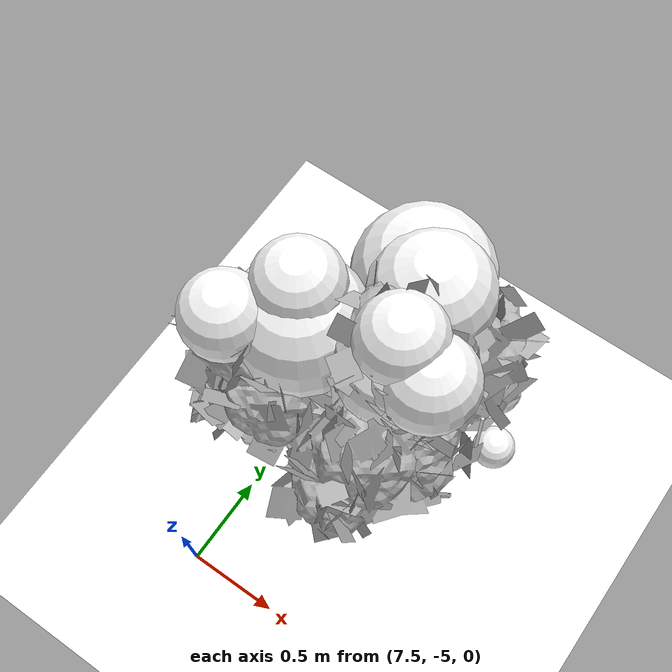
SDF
<sdf version="1.11">
 <world name="peach_orchard">
  <model name="ground">
   <static>true</static>
   <link name="link">
    <visual name="soil">
     <geometry><plane><normal>0 0 1</normal><size>32 22</size></plane></geometry>
     <material>
      <ambient>1 1 1 1</ambient>
      <diffuse>1 1 1 1</diffuse>
      <specular>0.1 0.1 0.1 1</specular>
      <pbr>
       <metal>
        <albedo_map>textures/soil_albedo.png</albedo_map>
        <normal_map type="tangent">textures/soil_normal.png</normal_map>
        <roughness>0.95</roughness>
        <metalness>0</metalness>
       </metal>
      </pbr>
     </material>
    </visual>
    <collision name="c_soil">
     <geometry><plane><normal>0 0 1</normal><size>32 22</size></plane></geometry>
    </collision>
   </link>
  </model>
  <model name="tree_r4_t1">
   <pose>8 -4.4 0 0 0 0</pose>
   <static>true</static>
   <link name="link">
    <visual name="tree_mesh">
     <pose>0 0 0 0 0 -0.311052</pose>
     <geometry>
      <mesh><uri>model://peach_sim/meshes/peach_tree_b.glb</uri><scale>0.943944 0.943944 0.943944</scale></mesh>
     </geometry>
    </visual>
    <visual name="trunk_0">
     <pose>0 0 0.15524 0 0 0</pose>
     <geometry><cylinder><radius>0.0507696</radius><length>0.310479</length></cylinder></geometry>
     <material>
      <ambient>1 1 1 1</ambient>
      <diffuse>1 1 1 1</diffuse>
      <specular>0.1 0.1 0.1 1</specular>
      <pbr>
       <metal>
        <albedo_map>textures/bark_albedo.png</albedo_map>
        <normal_map type="tangent">textures/bark_normal.png</normal_map>
        <roughness>0.9</roughness>
        <metalness>0</metalness>
       </metal>
      </pbr>
     </material>
    </visual>
    <collision name="c_trunk_0">
     <pose>0 0 0.15524 0 0 0</pose>
     <geometry><cylinder><radius>0.0507696</radius><length>0.310479</length></cylinder></geometry>
    </collision>
    <visual name="trunk_1">
     <pose>0 0 0.437493 0 0 0</pose>
     <geometry><cylinder><radius>0.0365541</radius><length>0.254028</length></cylinder></geometry>
     <material>
      <ambient>1 1 1 1</ambient>
      <diffuse>1 1 1 1</diffuse>
      <specular>0.1 0.1 0.1 1</specular>
      <pbr>
       <metal>
        <albedo_map>textures/bark_albedo.png</albedo_map>
        <normal_map type="tangent">textures/bark_normal.png</normal_map>
        <roughness>0.9</roughness>
        <metalness>0</metalness>
       </metal>
      </pbr>
     </material>
    </visual>
    <collision name="c_trunk_1">
     <pose>0 0 0.437493 0 0 0</pose>
     <geometry><cylinder><radius>0.0365541</radius><length>0.254028</length></cylinder></geometry>
    </collision>
    <visual name="root_flare">
     <pose>0 0 0.035 0 0 0</pose>
     <geometry><cylinder><radius>0.073616</radius><length>0.07</length></cylinder></geometry>
     <material>
      <ambient>1 1 1 1</ambient>
      <diffuse>1 1 1 1</diffuse>
      <specular>0.1 0.1 0.1 1</specular>
      <pbr>
       <metal>
        <albedo_map>textures/bark_albedo.png</albedo_map>
        <normal_map type="tangent">textures/bark_normal.png</normal_map>
        <roughness>0.95</roughness>
        <metalness>0</metalness>
       </metal>
      </pbr>
     </material>
    </visual>
    <visual name="scaffold_0">
     <pose>-0.0481711 0.335949 0.754969 0 0.963933 1.71321</pose>
     <geometry><cylinder><radius>0.022</radius><length>0.826317</length></cylinder></geometry>
     <material>
      <ambient>1 1 1 1</ambient>
      <diffuse>1 1 1 1</diffuse>
      <specular>0.1 0.1 0.1 1</specular>
      <pbr>
       <metal>
        <albedo_map>textures/bark_albedo.png</albedo_map>
        <normal_map type="tangent">textures/bark_normal.png</normal_map>
        <roughness>0.9</roughness>
        <metalness>0</metalness>
       </metal>
      </pbr>
     </material>
    </visual>
    <collision name="c_scaffold_0">
     <pose>-0.0481711 0.335949 0.754969 0 0.963933 1.71321</pose>
     <geometry><cylinder><radius>0.022</radius><length>0.826317</length></cylinder></geometry>
    </collision>
    <visual name="branchlet_0_0">
     <pose>-0.157032 0.624105 0.888296 0 1.48009 2.19614</pose>
     <geometry><cylinder><radius>0.012</radius><length>0.289139</length></cylinder></geometry>
     <material>
      <ambient>1 1 1 1</ambient>
      <diffuse>1 1 1 1</diffuse>
      <specular>0.1 0.1 0.1 1</specular>
      <pbr>
       <metal>
        <albedo_map>textures/bark_albedo.png</albedo_map>
        <normal_map type="tangent">textures/bark_normal.png</normal_map>
        <roughness>0.9</roughness>
        <metalness>0</metalness>
       </metal>
      </pbr>
     </material>
    </visual>
    <visual name="branchlet_0_1">
     <pose>-0.154471 0.499819 1.01339 0 0.948906 -2.23811</pose>
     <geometry><cylinder><radius>0.012</radius><length>0.278538</length></cylinder></geometry>
     <material>
      <ambient>1 1 1 1</ambient>
      <diffuse>1 1 1 1</diffuse>
      <specular>0.1 0.1 0.1 1</specular>
      <pbr>
       <metal>
        <albedo_map>textures/bark_albedo.png</albedo_map>
        <normal_map type="tangent">textures/bark_normal.png</normal_map>
        <roughness>0.9</roughness>
        <metalness>0</metalness>
       </metal>
      </pbr>
     </material>
    </visual>
    <visual name="branchlet_0_2">
     <pose>-0.0641558 0.301136 0.864269 0 0.559937 -1.79024</pose>
     <geometry><cylinder><radius>0.012</radius><length>0.22086</length></cylinder></geometry>
     <material>
      <ambient>1 1 1 1</ambient>
      <diffuse>1 1 1 1</diffuse>
      <specular>0.1 0.1 0.1 1</specular>
      <pbr>
       <metal>
        <albedo_map>textures/bark_albedo.png</albedo_map>
        <normal_map type="tangent">textures/bark_normal.png</normal_map>
        <roughness>0.9</roughness>
        <metalness>0</metalness>
       </metal>
      </pbr>
     </material>
    </visual>
    <visual name="scaffold_1">
     <pose>0.0949287 0.27659 0.712761 0 0.986442 1.24018</pose>
     <geometry><cylinder><radius>0.022</radius><length>0.701206</length></cylinder></geometry>
     <material>
      <ambient>1 1 1 1</ambient>
      <diffuse>1 1 1 1</diffuse>
      <specular>0.1 0.1 0.1 1</specular>
      <pbr>
       <metal>
        <albedo_map>textures/bark_albedo.png</albedo_map>
        <normal_map type="tangent">textures/bark_normal.png</normal_map>
        <roughness>0.9</roughness>
        <metalness>0</metalness>
       </metal>
      </pbr>
     </material>
    </visual>
    <collision name="c_scaffold_1">
     <pose>0.0949287 0.27659 0.712761 0 0.986442 1.24018</pose>
     <geometry><cylinder><radius>0.022</radius><length>0.701206</length></cylinder></geometry>
    </collision>
    <visual name="branchlet_1_0">
     <pose>0.0131108 0.411685 0.906023 0 0.927525 -3.11992</pose>
     <geometry><cylinder><radius>0.012</radius><length>0.322883</length></cylinder></geometry>
     <material>
      <ambient>1 1 1 1</ambient>
      <diffuse>1 1 1 1</diffuse>
      <specular>0.1 0.1 0.1 1</specular>
      <pbr>
       <metal>
        <albedo_map>textures/bark_albedo.png</albedo_map>
        <normal_map type="tangent">textures/bark_normal.png</normal_map>
        <roughness>0.9</roughness>
        <metalness>0</metalness>
       </metal>
      </pbr>
     </material>
    </visual>
    <visual name="branchlet_1_1">
     <pose>0.0722677 0.304165 0.846355 0 0.333441 -2.86091</pose>
     <geometry><cylinder><radius>0.012</radius><length>0.226736</length></cylinder></geometry>
     <material>
      <ambient>1 1 1 1</ambient>
      <diffuse>1 1 1 1</diffuse>
      <specular>0.1 0.1 0.1 1</specular>
      <pbr>
       <metal>
        <albedo_map>textures/bark_albedo.png</albedo_map>
        <normal_map type="tangent">textures/bark_normal.png</normal_map>
        <roughness>0.9</roughness>
        <metalness>0</metalness>
       </metal>
      </pbr>
     </material>
    </visual>
    <visual name="scaffold_2">
     <pose>-0.212516 0.185098 0.695075 0 1.01325 2.42504</pose>
     <geometry><cylinder><radius>0.022</radius><length>0.664243</length></cylinder></geometry>
     <material>
      <ambient>1 1 1 1</ambient>
      <diffuse>1 1 1 1</diffuse>
      <specular>0.1 0.1 0.1 1</specular>
      <pbr>
       <metal>
        <albedo_map>textures/bark_albedo.png</albedo_map>
        <normal_map type="tangent">textures/bark_normal.png</normal_map>
        <roughness>0.9</roughness>
        <metalness>0</metalness>
       </metal>
      </pbr>
     </material>
    </visual>
    <collision name="c_scaffold_2">
     <pose>-0.212516 0.185098 0.695075 0 1.01325 2.42504</pose>
     <geometry><cylinder><radius>0.022</radius><length>0.664243</length></cylinder></geometry>
    </collision>
    <visual name="branchlet_2_0">
     <pose>-0.524785 0.410671 0.843061 0 1.5172 2.63982</pose>
     <geometry><cylinder><radius>0.012</radius><length>0.328859</length></cylinder></geometry>
     <material>
      <ambient>1 1 1 1</ambient>
      <diffuse>1 1 1 1</diffuse>
      <specular>0.1 0.1 0.1 1</specular>
      <pbr>
       <metal>
        <albedo_map>textures/bark_albedo.png</albedo_map>
        <normal_map type="tangent">textures/bark_normal.png</normal_map>
        <roughness>0.9</roughness>
        <metalness>0</metalness>
       </metal>
      </pbr>
     </material>
    </visual>
    <visual name="branchlet_2_1">
     <pose>-0.241769 0.160051 0.831848 0 0.466546 -1.48592</pose>
     <geometry><cylinder><radius>0.012</radius><length>0.243515</length></cylinder></geometry>
     <material>
      <ambient>1 1 1 1</ambient>
      <diffuse>1 1 1 1</diffuse>
      <specular>0.1 0.1 0.1 1</specular>
      <pbr>
       <metal>
        <albedo_map>textures/bark_albedo.png</albedo_map>
        <normal_map type="tangent">textures/bark_normal.png</normal_map>
        <roughness>0.9</roughness>
        <metalness>0</metalness>
       </metal>
      </pbr>
     </material>
    </visual>
    <visual name="canopy_0">
     <pose>0.0686515 0.631176 1.83042 0 0 0</pose>
     <geometry><sphere><radius>0.269297</radius></sphere></geometry>
     <material>
      <ambient>1 1 1 1</ambient>
      <diffuse>1 1 1 1</diffuse>
      <specular>0.1 0.1 0.1 1</specular>
      <pbr>
       <metal>
        <albedo_map>textures/leaf_albedo.png</albedo_map>
        <normal_map type="tangent">textures/leaf_normal.png</normal_map>
        <roughness>0.85</roughness>
        <metalness>0</metalness>
       </metal>
      </pbr>
     </material>
    </visual>
    <collision name="c_canopy_0">
     <pose>0.0686515 0.631176 1.83042 0 0 0</pose>
     <geometry><sphere><radius>0.269297</radius></sphere></geometry>
    </collision>
    <visual name="canopy_1">
     <pose>0.134012 0.302167 2.07886 0 0 0</pose>
     <geometry><sphere><radius>0.186712</radius></sphere></geometry>
     <material>
      <ambient>1 1 1 1</ambient>
      <diffuse>1 1 1 1</diffuse>
      <specular>0.1 0.1 0.1 1</specular>
      <pbr>
       <metal>
        <albedo_map>textures/leaf_albedo.png</albedo_map>
        <normal_map type="tangent">textures/leaf_normal.png</normal_map>
        <roughness>0.85</roughness>
        <metalness>0</metalness>
       </metal>
      </pbr>
     </material>
    </visual>
    <collision name="c_canopy_1">
     <pose>0.134012 0.302167 2.07886 0 0 0</pose>
     <geometry><sphere><radius>0.186712</radius></sphere></geometry>
    </collision>
    <visual name="canopy_2">
     <pose>-0.489388 0.0438228 1.98173 0 0 0</pose>
     <geometry><sphere><radius>0.183748</radius></sphere></geometry>
     <material>
      <ambient>1 1 1 1</ambient>
      <diffuse>1 1 1 1</diffuse>
      <specular>0.1 0.1 0.1 1</specular>
      <pbr>
       <metal>
        <albedo_map>textures/leaf_albedo.png</albedo_map>
        <normal_map type="tangent">textures/leaf_normal.png</normal_map>
        <roughness>0.85</roughness>
        <metalness>0</metalness>
       </metal>
      </pbr>
     </material>
    </visual>
    <collision name="c_canopy_2">
     <pose>-0.489388 0.0438228 1.98173 0 0 0</pose>
     <geometry><sphere><radius>0.183748</radius></sphere></geometry>
    </collision>
    <visual name="canopy_3">
     <pose>-0.0267887 0.734815 1.707 0 0 0</pose>
     <geometry><sphere><radius>0.311519</radius></sphere></geometry>
     <material>
      <ambient>1 1 1 1</ambient>
      <diffuse>1 1 1 1</diffuse>
      <specular>0.1 0.1 0.1 1</specular>
      <pbr>
       <metal>
        <albedo_map>textures/leaf_albedo.png</albedo_map>
        <normal_map type="tangent">textures/leaf_normal.png</normal_map>
        <roughness>0.85</roughness>
        <metalness>0</metalness>
       </metal>
      </pbr>
     </material>
    </visual>
    <visual name="canopy_4">
     <pose>0.20033 0.277217 1.91852 0 0 0</pose>
     <geometry><sphere><radius>0.213361</radius></sphere></geometry>
     <material>
      <ambient>1 1 1 1</ambient>
      <diffuse>1 1 1 1</diffuse>
      <specular>0.1 0.1 0.1 1</specular>
      <pbr>
       <metal>
        <albedo_map>textures/leaf_albedo.png</albedo_map>
        <normal_map type="tangent">textures/leaf_normal.png</normal_map>
        <roughness>0.85</roughness>
        <metalness>0</metalness>
       </metal>
      </pbr>
     </material>
    </visual>
    <visual name="canopy_5">
     <pose>-0.278591 0.22531 1.8503 0 0 0</pose>
     <geometry><sphere><radius>0.291861</radius></sphere></geometry>
     <material>
      <ambient>1 1 1 1</ambient>
      <diffuse>1 1 1 1</diffuse>
      <specular>0.1 0.1 0.1 1</specular>
      <pbr>
       <metal>
        <albedo_map>textures/leaf_albedo.png</albedo_map>
        <normal_map type="tangent">textures/leaf_normal.png</normal_map>
        <roughness>0.85</roughness>
        <metalness>0</metalness>
       </metal>
      </pbr>
     </material>
    </visual>
    <visual name="canopy_6">
     <pose>0.123876 0.271858 1.86183 0 0 0</pose>
     <geometry><sphere><radius>0.235888</radius></sphere></geometry>
     <material>
      <ambient>1 1 1 1</ambient>
      <diffuse>1 1 1 1</diffuse>
      <specular>0.1 0.1 0.1 1</specular>
      <pbr>
       <metal>
        <albedo_map>textures/leaf_albedo.png</albedo_map>
        <normal_map type="tangent">textures/leaf_normal.png</normal_map>
        <roughness>0.85</roughness>
        <metalness>0</metalness>
       </metal>
      </pbr>
     </material>
    </visual>
    <visual name="canopy_7">
     <pose>0.290338 0.261265 1.97135 0 0 0</pose>
     <geometry><sphere><radius>0.201224</radius></sphere></geometry>
     <material>
      <ambient>1 1 1 1</ambient>
      <diffuse>1 1 1 1</diffuse>
      <specular>0.1 0.1 0.1 1</specular>
      <pbr>
       <metal>
        <albedo_map>textures/leaf_albedo.png</albedo_map>
        <normal_map type="tangent">textures/leaf_normal.png</normal_map>
        <roughness>0.85</roughness>
        <metalness>0</metalness>
       </metal>
      </pbr>
     </material>
    </visual>
    <visual name="canopy_8">
     <pose>-0.312778 0.280997 2.04323 0 0 0</pose>
     <geometry><sphere><radius>0.19209</radius></sphere></geometry>
     <material>
      <ambient>1 1 1 1</ambient>
      <diffuse>1 1 1 1</diffuse>
      <specular>0.1 0.1 0.1 1</specular>
      <pbr>
       <metal>
        <albedo_map>textures/leaf_albedo.png</albedo_map>
        <normal_map type="tangent">textures/leaf_normal.png</normal_map>
        <roughness>0.85</roughness>
        <metalness>0</metalness>
       </metal>
      </pbr>
     </material>
    </visual>
    <visual name="canopy_9">
     <pose>0.0521376 0.682787 1.68061 0 0 0</pose>
     <geometry><sphere><radius>0.229112</radius></sphere></geometry>
     <material>
      <ambient>1 1 1 1</ambient>
      <diffuse>1 1 1 1</diffuse>
      <specular>0.1 0.1 0.1 1</specular>
      <pbr>
       <metal>
        <albedo_map>textures/leaf_albedo.png</albedo_map>
        <normal_map type="tangent">textures/leaf_normal.png</normal_map>
        <roughness>0.85</roughness>
        <metalness>0</metalness>
       </metal>
      </pbr>
     </material>
    </visual>
    <visual name="foliage_0">
     <pose>0.577834 0.410754 1.32219 0 0 0</pose>
     <geometry><sphere><radius>0.0916093</radius></sphere></geometry>
     <material>
      <ambient>1 1 1 1</ambient>
      <diffuse>1 1 1 1</diffuse>
      <specular>0.1 0.1 0.1 1</specular>
      <pbr>
       <metal>
        <albedo_map>textures/leaf_albedo.png</albedo_map>
        <normal_map type="tangent">textures/leaf_normal.png</normal_map>
        <roughness>0.85</roughness>
        <metalness>0</metalness>
       </metal>
      </pbr>
     </material>
    </visual>
    <visual name="foliage_4">
     <pose>0.15778 -0.0181562 1.41319 0 0 0</pose>
     <geometry><sphere><radius>0.108625</radius></sphere></geometry>
     <material>
      <ambient>1 1 1 1</ambient>
      <diffuse>1 1 1 1</diffuse>
      <specular>0.1 0.1 0.1 1</specular>
      <pbr>
       <metal>
        <albedo_map>textures/leaf_albedo.png</albedo_map>
        <normal_map type="tangent">textures/leaf_normal.png</normal_map>
        <roughness>0.85</roughness>
        <metalness>0</metalness>
       </metal>
      </pbr>
     </material>
    </visual>
    <visual name="foliage_8">
     <pose>0.449316 0.681001 1.2221 0 0 0</pose>
     <geometry><sphere><radius>0.103209</radius></sphere></geometry>
     <material>
      <ambient>1 1 1 1</ambient>
      <diffuse>1 1 1 1</diffuse>
      <specular>0.1 0.1 0.1 1</specular>
      <pbr>
       <metal>
        <albedo_map>textures/leaf_albedo.png</albedo_map>
        <normal_map type="tangent">textures/leaf_normal.png</normal_map>
        <roughness>0.85</roughness>
        <metalness>0</metalness>
       </metal>
      </pbr>
     </material>
    </visual>
    <visual name="twig_0">
     <pose>0.51105 0.348296 1.55118 0 0.306814 2.04698</pose>
     <geometry><cylinder><radius>0.007</radius><length>0.194459</length></cylinder></geometry>
     <material>
      <ambient>1 1 1 1</ambient>
      <diffuse>1 1 1 1</diffuse>
      <specular>0.1 0.1 0.1 1</specular>
      <pbr>
       <metal>
        <albedo_map>textures/bark_albedo.png</albedo_map>
        <normal_map type="tangent">textures/bark_normal.png</normal_map>
        <roughness>0.9</roughness>
        <metalness>0</metalness>
       </metal>
      </pbr>
     </material>
    </visual>
    <visual name="twig_1">
     <pose>0.300607 0.243046 1.6074 0 0.578146 2.69487</pose>
     <geometry><cylinder><radius>0.007</radius><length>0.193919</length></cylinder></geometry>
     <material>
      <ambient>1 1 1 1</ambient>
      <diffuse>1 1 1 1</diffuse>
      <specular>0.1 0.1 0.1 1</specular>
      <pbr>
       <metal>
        <albedo_map>textures/bark_albedo.png</albedo_map>
        <normal_map type="tangent">textures/bark_normal.png</normal_map>
        <roughness>0.9</roughness>
        <metalness>0</metalness>
       </metal>
      </pbr>
     </material>
    </visual>
    <visual name="twig_2">
     <pose>0.156032 0.157224 1.5854 0 0.672664 3.03218</pose>
     <geometry><cylinder><radius>0.007</radius><length>0.185541</length></cylinder></geometry>
     <material>
      <ambient>1 1 1 1</ambient>
      <diffuse>1 1 1 1</diffuse>
      <specular>0.1 0.1 0.1 1</specular>
      <pbr>
       <metal>
        <albedo_map>textures/bark_albedo.png</albedo_map>
        <normal_map type="tangent">textures/bark_normal.png</normal_map>
        <roughness>0.9</roughness>
        <metalness>0</metalness>
       </metal>
      </pbr>
     </material>
    </visual>
    <visual name="twig_3">
     <pose>0.20544 0.0854576 1.59078 0 0.191025 2.39317</pose>
     <geometry><cylinder><radius>0.007</radius><length>0.135101</length></cylinder></geometry>
     <material>
      <ambient>1 1 1 1</ambient>
      <diffuse>1 1 1 1</diffuse>
      <specular>0.1 0.1 0.1 1</specular>
      <pbr>
       <metal>
        <albedo_map>textures/bark_albedo.png</albedo_map>
        <normal_map type="tangent">textures/bark_normal.png</normal_map>
        <roughness>0.9</roughness>
        <metalness>0</metalness>
       </metal>
      </pbr>
     </material>
    </visual>
    <visual name="twig_4">
     <pose>0.162365 -0.018935 1.59292 0 0.596876 3.09687</pose>
     <geometry><cylinder><radius>0.007</radius><length>0.190433</length></cylinder></geometry>
     <material>
      <ambient>1 1 1 1</ambient>
      <diffuse>1 1 1 1</diffuse>
      <specular>0.1 0.1 0.1 1</specular>
      <pbr>
       <metal>
        <albedo_map>textures/bark_albedo.png</albedo_map>
        <normal_map type="tangent">textures/bark_normal.png</normal_map>
        <roughness>0.9</roughness>
        <metalness>0</metalness>
       </metal>
      </pbr>
     </material>
    </visual>
    <visual name="twig_5">
     <pose>0.179815 0.501121 1.41498 0 0.534061 2.84963</pose>
     <geometry><cylinder><radius>0.007</radius><length>0.184564</length></cylinder></geometry>
     <material>
      <ambient>1 1 1 1</ambient>
      <diffuse>1 1 1 1</diffuse>
      <specular>0.1 0.1 0.1 1</specular>
      <pbr>
       <metal>
        <albedo_map>textures/bark_albedo.png</albedo_map>
        <normal_map type="tangent">textures/bark_normal.png</normal_map>
        <roughness>0.9</roughness>
        <metalness>0</metalness>
       </metal>
      </pbr>
     </material>
    </visual>
    <visual name="twig_6">
     <pose>0.194012 0.570015 1.41971 0 0.433594 2.76547</pose>
     <geometry><cylinder><radius>0.007</radius><length>0.159415</length></cylinder></geometry>
     <material>
      <ambient>1 1 1 1</ambient>
      <diffuse>1 1 1 1</diffuse>
      <specular>0.1 0.1 0.1 1</specular>
      <pbr>
       <metal>
        <albedo_map>textures/bark_albedo.png</albedo_map>
        <normal_map type="tangent">textures/bark_normal.png</normal_map>
        <roughness>0.9</roughness>
        <metalness>0</metalness>
       </metal>
      </pbr>
     </material>
    </visual>
    <visual name="twig_7">
     <pose>0.319479 0.639956 1.36571 0 0.63798 2.80942</pose>
     <geometry><cylinder><radius>0.007</radius><length>0.105088</length></cylinder></geometry>
     <material>
      <ambient>1 1 1 1</ambient>
      <diffuse>1 1 1 1</diffuse>
      <specular>0.1 0.1 0.1 1</specular>
      <pbr>
       <metal>
        <albedo_map>textures/bark_albedo.png</albedo_map>
        <normal_map type="tangent">textures/bark_normal.png</normal_map>
        <roughness>0.9</roughness>
        <metalness>0</metalness>
       </metal>
      </pbr>
     </material>
    </visual>
    <visual name="twig_8">
     <pose>0.488613 0.703619 1.39887 0 0.393801 3.07907</pose>
     <geometry><cylinder><radius>0.007</radius><length>0.119126</length></cylinder></geometry>
     <material>
      <ambient>1 1 1 1</ambient>
      <diffuse>1 1 1 1</diffuse>
      <specular>0.1 0.1 0.1 1</specular>
      <pbr>
       <metal>
        <albedo_map>textures/bark_albedo.png</albedo_map>
        <normal_map type="tangent">textures/bark_normal.png</normal_map>
        <roughness>0.9</roughness>
        <metalness>0</metalness>
       </metal>
      </pbr>
     </material>
    </visual>
   </link>
  </model>
 </world>
</sdf>
